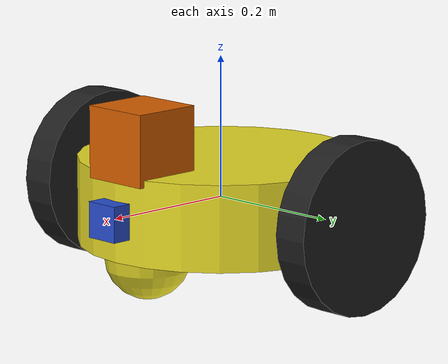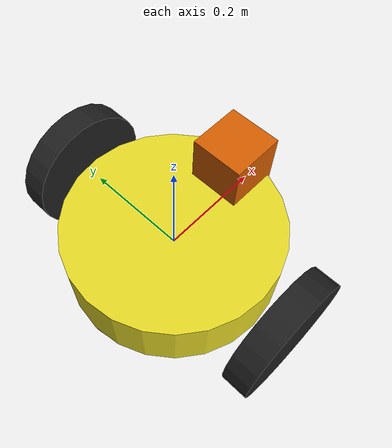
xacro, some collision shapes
<?xml version='1.0'?>

<robot name="my_robot" xmlns:xacro="http://www.ros.org/wiki/xacro">

  <xacro:include filename="$(find my_robot)/urdf/my_robot.gazebo" />

  <link name="robot_footprint"></link>

  <joint name="robot_footprint_joint" type="fixed">
    <origin xyz="0 0 0" rpy="0 0 0" />
    <parent link="robot_footprint"/>
    <child link="chassis" />
  </joint>

  <link name='chassis'>

    <inertial>
      <mass value="15.0"/>
      <origin xyz="0.0 0 0" rpy=" 0 0 0"/>
      <inertia
          ixx="0.1" ixy="0" ixz="0"
          iyy="0.1" iyz="0"
          izz="0.1"
      />
    </inertial>

    <collision name='collision'>
      <origin xyz="0 0 0" rpy=" 0 0 0"/>
      <geometry>
        <cylinder radius=".2" length=".12"/>
      </geometry>
    </collision>

    <visual name='chassis_visual'>
      <origin xyz="0 0 0" rpy=" 0 0 0"/>
      <geometry>
        <cylinder radius=".2" length=".12"/>
      </geometry>
    </visual>

    <collision name='back_caster_collision'>
      <origin xyz="-0.14 0 -0.06" rpy=" 0 0 0"/>
      <geometry>
        <sphere radius="0.0599"/>
      </geometry>
    </collision>

    <visual name='back_caster_visual'>
      <origin xyz="-0.14 0 -0.06" rpy=" 0 0 0"/>
      <geometry>
        <sphere radius="0.06"/>
      </geometry>
    </visual>

    <collision name='front_caster_collision'>
      <origin xyz="0.14 0 -0.06" rpy=" 0 0 0"/>
      <geometry>
        <sphere radius="0.0599"/>
      </geometry>
    </collision>

    <visual name='front_caster_visual'>
      <origin xyz="0.14 0 -0.06" rpy=" 0 0 0"/>
      <geometry>
        <sphere radius="0.06"/>
      </geometry>
    </visual>

  </link>

  <gazebo reference="chassis">
    <pose>0 0 0.1 0 0 0</pose>
    <material>Gazebo/Yellow</material>
  </gazebo>

  <xacro:macro name="wheel" params="prefix">
    <link name="${prefix}_wheel">

      <inertial>
        <mass value="5.0"/>
        <origin xyz="0.0 0 0" rpy=" 0 0 0"/>
        <inertia
            ixx="0.1" ixy="0" ixz="0"
            iyy="0.1" iyz="0"
            izz="0.1"
        />
      </inertial>

      <collision name='${prefix}_wheel_collision'>
        <origin xyz="0 0 0" rpy=" 0 1.5707 1.5707"/>
        <geometry>
          <cylinder radius=".12" length=".05"/>
        </geometry>
      </collision>

      <visual name='${prefix}_wheel_visual'>
        <origin xyz="0 0 0" rpy=" 0 1.5707 1.5707"/>
        <geometry>
          <cylinder radius=".12" length=".05"/>
        </geometry>
      </visual>

    </link>

    <gazebo reference="${prefix}_wheel">
      <material>Gazebo/Black</material>
    </gazebo>

  </xacro:macro>

  <!-- Instantiate left and right wheels -->
  <xacro:wheel prefix="left"/>
  <xacro:wheel prefix="right"/>

  <joint type="continuous" name="left_wheel_hinge">
    <origin xyz="0 0.25 0" rpy="0 0 0"/>
    <child link="left_wheel"/>
    <parent link="chassis"/>
    <axis xyz="0 1 0" rpy="0 0 0"/>
    <limit effort="10000" velocity="1000"/>
    <dynamics damping="1.0" friction="1.0"/>
  </joint>

  <joint type="continuous" name="right_wheel_hinge">
    <origin xyz="0 -0.25 0" rpy="0 0 0"/>
    <child link="right_wheel"/>
    <parent link="chassis"/>
    <axis xyz="0 1 0" rpy="0 0 0"/>
    <limit effort="10000" velocity="1000"/>
    <dynamics damping="1.0" friction="1.0"/>
  </joint>

  <link name="camera">
    <inertial>
      <mass value="0.1"/>
      <origin xyz="0.0 0 0" rpy=" 0 0 0"/>
      <inertia
          ixx="1e-6" ixy="0" ixz="0"
          iyy="1e-6" iyz="0"
          izz="1e-6"
      />
    </inertial>

    <collision name='camera_collision'>
      <origin xyz="0 0 0" rpy=" 0 0 0"/>
      <geometry>
        <box size=".05 .05 .05"/>
      </geometry>
    </collision>

    <visual name='camera_visual'>
      <origin xyz="0 0 0" rpy=" 0 0 0"/>
      <geometry>
        <box size=".05 .05 .05"/>
      </geometry>
    </visual>

  </link>

  <gazebo reference="camera">
      <material>Gazebo/Blue</material>
  </gazebo>

  <joint name="camera_joint" type="fixed">
    <origin xyz="0.2 0 0" rpy="0 0 0"/>
    <parent link="chassis"/>
    <child link="camera"/>
    <axis xyz="0 1 0" rpy="0 0 0"/>
  </joint>

  <link name="hokuyo">
    <inertial>
      <mass value="1e-5"/>
      <origin xyz="0.0 0 0" rpy=" 0 0 0"/>
      <inertia
          ixx="1e-6" ixy="0" ixz="0"
          iyy="1e-6" iyz="0"
          izz="1e-6"
      />
    </inertial>

    <collision name='hokuyo_collision'>
      <origin xyz="0 0 0" rpy=" 0 0 0"/>
      <geometry>
        <box size=".1 .1 .1"/>
      </geometry>
    </collision>

    <visual name='hokuyo_visual'>
      <origin xyz="0 0 0" rpy=" 0 0 0"/>
      <geometry>
        <mesh filename="package://my_robot/meshes/hokuyo.dae"/>
      </geometry>
    </visual>
  </link>

  <joint name="hokuyo_joint" type="fixed">
    <origin xyz="0.15 0 0.1" rpy="0 0 0"/>
    <parent link="chassis"/>
    <child link="hokuyo"/>
    <axis xyz="0 1 0" rpy="0 0 0"/>
  </joint>

</robot>
